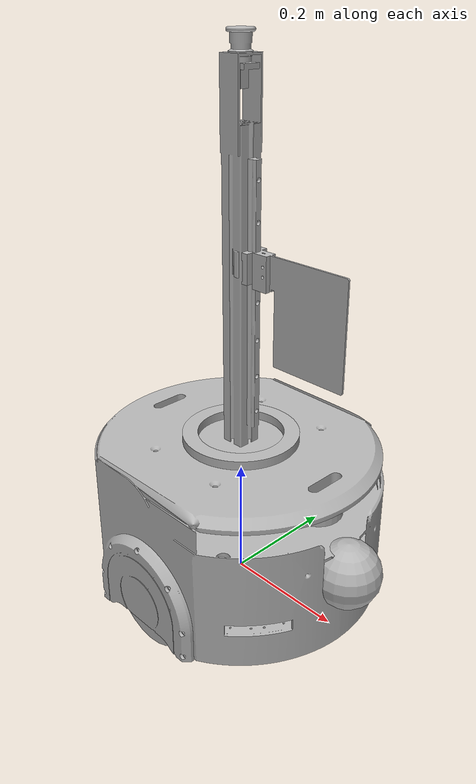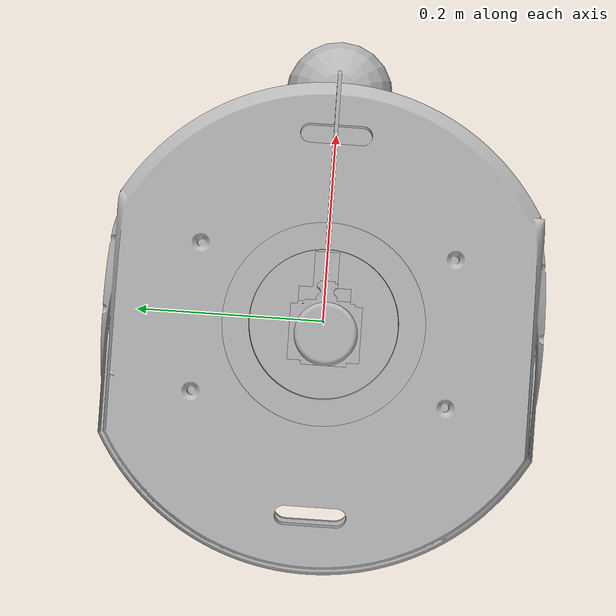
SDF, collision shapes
<?xml version='1.0' ?>
<sdf version='1.6'>
  <model name='amr'>
        <pose>0.0 0.0 -0.033 0 0 0</pose>
    	<link name='base_footprint' />

      	<joint name='base_link_joint' type='fixed'>
      		<pose>0.235 0.025 0.033 0 0 1.5708</pose>
      		<parent>base_footprint</parent>
      		<child>base_link</child>
      	</joint>

    	<link name='base_link'>
      		<inertial>
      		        <pose>0 0 0 0 0 0</pose>
        		<mass>40.0302</mass>
        		<inertia>
          			<ixx>0.7463130412500001</ixx>
          			<ixy>0</ixy>
          			<ixz>0</ixz>
          			<iyy>0.7463130412500001</iyy>
          			<iyz>0</iyz>
          			<izz>0.105879879</izz>
        		</inertia>
        	</inertial>

      		<collision name='base_link_collision'>
        		<pose relative_to='base_footprint' >0.235 0.025 0.033 0 0 1.5708</pose>
        		<geometry>
          			<mesh>
            				<uri>model://amr/meshes/ROBOTSEMNADA.dae</uri>
          			</mesh>
        		</geometry>
      		</collision>
      		<visual name='base_link_visual'>
        		<pose relative_to='base_footprint' >0.235 0.025 0.033 0 0 1.5708</pose>
        		<geometry>
          			<mesh>
            				<uri>model://amr/meshes/ROBOTSEMNADA.dae</uri>
          			</mesh>
        		</geometry>
        	</visual>
      </link>

      <joint name='torre_joint' type='fixed'>
      		<pose relative_to='base_link'>0.23 0 0.15 0 0 0</pose>
      		<parent>base_link</parent>
      		<child>torre_link</child>
      </joint>

      <link name='torre_link'>
      		<collision name='lidar_sensor_collision'>
          		<pose>0 0 0.285 0 0 1.5708</pose>
            		<geometry>
          			<mesh>
            				<uri>model://amr/meshes/torre001.dae</uri>
          			</mesh>
        		</geometry>
        	</collision>
      		<visual name='lidar_sensor_visual'>
        		<pose>0 0 0.285 0 0 1.5708</pose>
        		<geometry>
          			<mesh>
            				<uri>model://amr/meshes/torre001.dae</uri>
          			</mesh>
        		</geometry>
      		</visual>
      </link>

      <link name='realsense_link'>
      		<pose>0.23 0 0.15 0 0 0</pose>
      		<sensor name="cameracolor" type="camera">
        		<camera name="camera">
          			<horizontal_fov>1.57</horizontal_fov>
          			<image>
            				<width>1280</width>
            				<height>720</height>
            				<format>RGB_INT8</format>
          			</image>
          			<clip>
            				<near>0.1</near>
            				<far>100</far>
          			</clip>
          			<noise>
            				<type>gaussian</type>
            				<mean>0.0</mean>
            				<stddev>0.007</stddev>
          			</noise>
        		</camera>
        		<always_on>1</always_on>
        		<update_rate>30</update_rate>
        		<visualize>1</visualize>
     		</sensor>
      		<sensor name="cameradepth" type="depth">
        		<camera name="camera">
          			<horizontal_fov>1.57</horizontal_fov>
          			<image>
            				<width>1280</width>
            				<height>720</height>
          			</image>
          			<clip>
            				<near>0.1</near>
            				<far>100</far>
          			</clip>
          			<noise>
            				<type>gaussian</type>
            				<mean>0.0</mean>
            				<stddev>0.100</stddev>
          			</noise>
        		</camera>
        		<always_on>1</always_on>
        		<update_rate>30</update_rate>
        		<visualize>0</visualize>
     		 </sensor>
      		<sensor name="cameraired1" type="camera">
        <camera name="camera">
          <horizontal_fov>1.57</horizontal_fov>
          <image>
            <width>1280</width>
            <height>720</height>
            <format>L_INT8</format>
          </image>
          <clip>
            <near>0.1</near>
            <far>100</far>
          </clip>
          <noise>
            <type>gaussian</type>
            <mean>0.0</mean>
            <stddev>0.05</stddev>
          </noise>
        </camera>
        <always_on>1</always_on>
        <update_rate>1</update_rate>
        <visualize>0</visualize>
      </sensor>
      <sensor name="cameraired2" type="camera">
        <camera name="camera">
          <horizontal_fov>1.57</horizontal_fov>
          <image>
            <width>1280</width>
            <height>720</height>
            <format>L_INT8</format>
          </image>
          <clip>
            <near>0.1</near>
            <far>100</far>
          </clip>
          <noise>
            <type>gaussian</type>
            <mean>0.0</mean>
            <stddev>0.05</stddev>
          </noise>
        </camera>
        <always_on>1</always_on>
        <update_rate>1</update_rate>
        <visualize>0</visualize>
      </sensor>

    		<collision name='camera_link_collision'>
       		<pose>0 0 0 0 -0 0</pose>
        		<geometry>
          			<sphere>
            				<radius>0.054</radius>
          			</sphere>
        		</geometry>
      		</collision>
      		<visual name='camera_link_visual'>
        		<pose>0 0 0 1.57 0 1.57</pose>
        		<geometry>
          			<mesh>
            				<scale>1 1 1</scale>
            				<uri>model://amr/meshes/d435.dae</uri>
          			</mesh>
        		</geometry>
      		</visual>
      		<inertial>
        		<pose>0 0 0 0 0 0</pose>
        			<inertia>
          				<ixx>0.001</ixx>
          				<ixy>0.000</ixy>
          				<ixz>0.000</ixz>
          				<iyy>0.001</iyy>
          				<iyz>0.000</iyz>
          				<izz>0.001</izz>
        			</inertia>
        		<mass>0.564</mass>
      		</inertial>
      	</link>

    	<joint name='camera_joint' type='fixed'>
      		<pose relative_to='base_link'>0.23 0 0.15 0 0 0</pose>
      		<parent>base_link</parent>
      		<child>realsense_link</child>
        </joint>
        <plugin name="camera" filename="librealsense_gazebo_plugin.so">
      	<prefix>camera</prefix>
      <depthUpdateRate>30.0</depthUpdateRate>
      <colorUpdateRate>30.0</colorUpdateRate>
      <infraredUpdateRate>1.0</infraredUpdateRate>
      <depthTopicName>aligned_depth_to_color/image_raw</depthTopicName>
      <depthCameraInfoTopicName>depth/camera_info</depthCameraInfoTopicName>
      <colorTopicName>color/image_raw</colorTopicName>
      <colorCameraInfoTopicName>color/camera_info</colorCameraInfoTopicName>
      <infrared1TopicName>infra1/image_raw</infrared1TopicName>
      <infrared1CameraInfoTopicName>infra1/camera_info</infrared1CameraInfoTopicName>
      <infrared2TopicName>infra2/image_raw</infrared2TopicName>
      <infrared2CameraInfoTopicName>infra2/camera_info</infrared2CameraInfoTopicName>
      <colorOpticalframeName>camera_rgb_optical_frame</colorOpticalframeName>
      <depthOpticalframeName>camera_depth_optical_frame</depthOpticalframeName>
      <infrared1OpticalframeName>camera_left_ir_optical_frame</infrared1OpticalframeName>
      <infrared2OpticalframeName>camera_right_ir_optical_frame</infrared2OpticalframeName>
      <rangeMinDepth>0.3</rangeMinDepth>
      <rangeMaxDepth>3.0</rangeMaxDepth>
      <pointCloud>true</pointCloud>
      <pointCloudTopicName>depth/color/points</pointCloudTopicName>
      <pointCloudCutoff>0.3</pointCloudCutoff>
    </plugin>

    	<joint name='lidar_joint' type='fixed'>
      		<pose>0.165 0 0.24 0 -0 0</pose>
      		<parent>base_link</parent>
      		<child>lidar_link</child>
    	</joint>

      	<link name='lidar_link'>
        	<inertial>
        <pose>-0.052 0 0.111 0 0 0</pose>
        <inertia>
          <ixx>0.001</ixx>
          <ixy>0.000</ixy>
          <ixz>0.000</ixz>
          <iyy>0.001</iyy>
          <iyz>0.000</iyz>
          <izz>0.001</izz>
        </inertia>
        <mass>0.114</mass>
      </inertial>
        	<collision name='lidar_sensor_collision'>
          		<pose>0.165 0 0.24 0 -0 0</pose>
          		<geometry>
            			<cylinder>
              				<radius>0.04</radius>
              				<length>0.02</length>
            			</cylinder>
          		</geometry>
        	</collision>
      		<visual name='lidar_sensor_visual'>
        		<pose>0.165 0 0.24 0 0 0</pose>
        		<geometry>
          			<cylinder>
            				<length>0.04</length>
            				<radius>0.02</radius>
          			</cylinder>
        		</geometry>
      		</visual>
      		<sensor name='amr_laserscan' type='ray'>
          		<always_on>1</always_on>
          		<visualize>1</visualize>
          		<pose>0.165 0 0.24 0 -0 0</pose>
          		<update_rate>10</update_rate>
          		<ray>
            			<scan>
              				<horizontal>
                				<samples>720</samples>
                				<resolution>0.5</resolution>
                				<min_angle>-2.194</min_angle>
                				<max_angle>2.194</max_angle>
              				</horizontal>
              				<vertical>
                				<samples>1</samples>
                				<min_angle>0</min_angle>
                				<max_angle>2</max_angle>
              				</vertical>
            			</scan>
            			<range>
              				<min>0.33</min>
              				<max>12.5</max>
              				<resolution>0.05</resolution>
            			</range>
            			<noise>
              				<type>gaussian</type>
              				<mean>0</mean>
              				<stddev>0.001</stddev>
            			</noise>
          		</ray>
          		<plugin name='base_scan' filename='libgazebo_ros_ray_sensor.so'>
            			<ros>
              				<remapping>~/out:=scan</remapping>
            			</ros>
            			<output_type>sensor_msgs/LaserScan</output_type>
            			<frame_name>base_scan</frame_name>
            			<base_frame_id>base_link</base_frame_id>
          		</plugin>
        	</sensor>
    </link>

    <!--isto está errado torna o robot instável-->
    <joint name='pega_joint' type='fixed'>
    		<pose relative_to='base_footprint'>0 0 0.44 0 0 3.1415927</pose>
      		<parent>base_link</parent>
      		<child>pega_link</child>
    </joint>

    <link name='pega_link'>
      		<pose relative_to='base_footprint'>0 0 0.44 0 0 3.1415927</pose>
      <inertial>
        <pose>0 0 0 0 -0 0</pose>
        <mass>1.000</mass>
        <inertia>
        <ixx>0.00025349</ixx>
          <ixy>0</ixy>
          <ixz>0</ixz>
          <iyy>0.00025349</iyy>
          <iyz>0</iyz>
          <izz>0.000340312</izz>
          </inertia>
      </inertial>
      		<collision name='pega_link_collision'>
        		<pose>-.2 0 0 1.57 0 0</pose>
        		<geometry>
          			<mesh>
            				<uri>model://amr/meshes/pega001.dae</uri>
          			</mesh>
        		</geometry>
      		</collision>
      		<visual name='pega_link_visual'>
        		<pose>-.2 0 0 1.57 0 0</pose>
        		<geometry>
          			<mesh>
            				<scale>1 1 1</scale>
            				<uri>model://amr/meshes/pega001.dae</uri>
          			</mesh>
        		</geometry>
      		</visual>
    </link>

    <joint name='fcaster_joint' type='ball'>
    	<pose relative_to='base_footprint'>0.135 0 0.025 0 -0 0</pose>
    		<parent>base_link</parent>
      		<child>fcaster_link</child>
      		<axis>
        		<xyz>1 1 1</xyz>
        		<limit>
          			<lower>-1e+16</lower>
          			<upper>1e+16</upper>
          			<effort>1</effort>
          			<velocity>5</velocity>
        		</limit>
        		<dynamics>
          			<spring_reference>0</spring_reference>
          			<spring_stiffness>0</spring_stiffness>
        		</dynamics>
      		</axis>
    </joint>

    <link name='fcaster_link'>
      	<pose relative_to='base_footprint'>0.135 0 0.025 0 -0 0</pose>
      	<inertial>
        	<mass>1</mass>
        	<inertia>
          		<ixx>0.0025349</ixx>
          		<ixy>0</ixy>
          		<ixz>0</ixz>
          		<iyy>0.0025349</iyy>
          		<iyz>0</iyz>
          		<izz>0.00340312</izz>
        	</inertia>
      	</inertial>
      	<collision name='fcaster_link_collision'>
        	<pose>0 0 0.0 0 -0 0</pose>
        	<geometry>
          		<sphere>
            			<radius>0.025</radius>
          		</sphere>
        	</geometry>
      	</collision>
      	<visual name='fcaster_link_visual'>
        	<pose>0 0 0 0 0 0</pose>
        	<geometry>
          		<sphere>
            			<radius>0.025</radius>
          		</sphere>
        	</geometry>
      	</visual>
    </link>

    <joint name='rcaster_joint' type='ball'>
     	<pose relative_to='base_footprint'>-0.135 0 0.025 0 0 0</pose>
      	<parent>base_link</parent>
      	<child>rcaster_link</child>
      	<axis>
        	<xyz>1 1 1</xyz>
        	<limit>
          		<lower>-1e+16</lower>
          		<upper>1e+16</upper>
          		<effort>1</effort>
          		<velocity>5</velocity>
        	</limit>
        	<dynamics>
          		<spring_reference>0</spring_reference>
          		<spring_stiffness>0</spring_stiffness>
        	</dynamics>
      	</axis>
    </joint>

    <link name='rcaster_link'>
      	<pose relative_to='base_footprint'>-0.135 0 0.025 0 0 0</pose>
      	<inertial>
        	<mass>1</mass>
        	<inertia>
          		<ixx>0.0025349</ixx>
          		<ixy>0</ixy>
          		<ixz>0</ixz>
          		<iyy>0.0025349</iyy>
          		<iyz>0</iyz>
          		<izz>0.00340312</izz>
        	</inertia>
      	</inertial>
      	<collision name='rcaster_link_collision'>
        	<pose>0 0 0.0 0 -0 0</pose>
        	<geometry>
          		<sphere>
            			<radius>0.025</radius>
          		</sphere>
        	</geometry>
      	</collision>
      	<visual name='rcaster_link_visual'>
        	<pose>0 0 0.0 0 -0 0</pose>
        	<geometry>
          		<sphere>
            			<radius>0.025</radius>
          		</sphere>
        	</geometry>
      	</visual>
    </link>

    <joint name='lwheel_joint' type='revolute'>
      <pose relative_to='base_footprint'>0 0.1825 0.0825 -1.5708 0 0</pose>
      <parent>base_link</parent>
      <child>lwheel_link</child>
      <axis>
        <xyz>0 0 1</xyz>
        <limit>
          <lower>-1e+16</lower>
          <upper>1e+16</upper>
          <effort>1</effort>
          <velocity>5</velocity>
        </limit>
        <dynamics>
          <spring_reference>0</spring_reference>
          <spring_stiffness>0</spring_stiffness>
        </dynamics>
      </axis>
    </joint>

    <link name='lwheel_link'>
      <pose relative_to='base_footprint'>0 0.1825 0.0825 -1.5708 0 0</pose>
      <inertial>
        <pose>0 0 0 0 -0 0</pose>
        <mass>10.05</mass>
        <inertia>
          <ixx>0.00117223</ixx>
          <ixy>0</ixy>
          <ixz>0</ixz>
          <iyy>0.0117223</iyy>
          <iyz>0</iyz>
          <izz>0.00117223</izz>
        </inertia>
      </inertial>
      <collision name='lwheel_link_collision'>
        <pose>0 0 0 0 -0 0</pose>
        <geometry>
          <cylinder>
            <length>0.0435</length>
            <radius>0.0825</radius>
          </cylinder>
        </geometry>
      </collision>
      <visual name='lwheel_link_visual'>
        <pose>0 0 0 1.5708 -0 0</pose>
        <geometry>
          <mesh>
            <scale>1 1 1</scale>
            <uri>model://amr/meshes/amr_wheel.dae</uri>
          </mesh>
        </geometry>
      </visual>
    </link>

    <joint name='rwheel_joint' type='revolute'>
      <pose relative_to='base_footprint'>0 -0.1825 0.0825 1.5708 -0 0</pose>
      <parent>base_link</parent>
      <child>rwheel_link</child>
      <axis>
        <xyz>0 0 -1</xyz>
        <limit>
          <lower>-1e+16</lower>
          <upper>1e+16</upper>
          <effort>1</effort>
          <velocity>5</velocity>
        </limit>
        <dynamics>
          <spring_reference>0</spring_reference>
          <spring_stiffness>0</spring_stiffness>
        </dynamics>
      </axis>
    </joint>
    <link name='rwheel_link'>
      <pose relative_to='base_footprint'>0 -0.1825 0.0825 1.5708 -0 0</pose>
      <inertial>
        <pose>0 0 0 0 -0 0</pose>
        <mass>10.05</mass>
        <inertia>
          <ixx>0.00117223</ixx>
          <ixy>0</ixy>
          <ixz>0</ixz>
          <iyy>0.0117223</iyy>
          <iyz>0</iyz>
          <izz>0.00117223</izz>
        </inertia>
      </inertial>
      <collision name='rwheel_link_collision'>
        <pose>0 0 0 0 -0 0</pose>
        <geometry>
          <cylinder>
            <length>0.0435</length>
            <radius>0.0825</radius>
          </cylinder>
        </geometry>
      </collision>
      <visual name='rwheel_link_visual'>
        <pose>0 0 0 1.5708 -0 0</pose>
        <geometry>
          <mesh>
            <scale>1 1 1</scale>
            <uri>model://amr/meshes/amr_wheel.dae</uri>
          </mesh>
        </geometry>
      </visual>
    </link>

    <joint name='imu_joint' type='fixed'>
      <pose relative_to='base_footprint'>0.165 0 0.24 0 -0 0</pose>
      <parent>base_link</parent>
      <child>imu_link</child>
    </joint>

    <link name='imu_link'>
        <sensor name='tb3_imu' type='imu'>
          <always_on>1</always_on>
          <update_rate>20</update_rate>
          <imu>
            <angular_velocity>
              <x>
                <noise type='gaussian'>
                  <mean>0</mean>
                  <stddev>0.0002</stddev>
                </noise>
              </x>
              <y>
                <noise type='gaussian'>
                  <mean>0</mean>
                  <stddev>0.0002</stddev>
                </noise>
              </y>
              <z>
                <noise type='gaussian'>
                  <mean>0</mean>
                  <stddev>0.0002</stddev>
                </noise>
              </z>
            </angular_velocity>
            <linear_acceleration>
              <x>
                <noise type='gaussian'>
                  <mean>0</mean>
                  <stddev>0.017</stddev>
                </noise>
              </x>
              <y>
                <noise type='gaussian'>
                  <mean>0</mean>
                  <stddev>0.017</stddev>
                </noise>
              </y>
              <z>
                <noise type='gaussian'>
                  <mean>0</mean>
                  <stddev>0.017</stddev>
                </noise>
              </z>
            </linear_acceleration>
          </imu>
          <plugin name='amr_imu' filename='libgazebo_ros_imu_sensor.so'>
            <ros>
              <remapping>~/out:=imu</remapping>
            </ros>
          </plugin>
        </sensor>
        <self_collide>0</self_collide>
        <inertial>
          <pose>0 0 0 0 -0 0</pose>
          <inertia>
            <ixx>1</ixx>
            <ixy>0</ixy>
            <ixz>0</ixz>
            <iyy>1</iyy>
            <iyz>0</iyz>
            <izz>1</izz>
          </inertia>
          <mass>1</mass>
        </inertial>
        <enable_wind>0</enable_wind>
        <kinematic>0</kinematic>
      </link>

    <plugin name='amr_diff_drive' filename='libgazebo_ros_diff_drive.so'>
        <update_rate>10</update_rate>
        <left_joint>lwheel_joint</left_joint>
        <right_joint>rwheel_joint</right_joint>
        <wheel_separation>0.365</wheel_separation>
        <wheel_diameter>0.23</wheel_diameter>
        <max_wheel_torque>20000</max_wheel_torque>
        <max_wheel_acceleration>1.0</max_wheel_acceleration>
        <command_topic>cmd_vel</command_topic>
        <odometry_topic>odometry</odometry_topic>
        <odometry_frame>odom</odometry_frame>
        <robot_base_frame>base_footprint</robot_base_frame>
        <!-- topic & remappings -->
        <ros>
   		<remapping>/cmd_vel:=diff_drive/cmd_vel</remapping>
  	</ros>
  	<publish_odom>1</publish_odom>
        <publish_odom_tf>1</publish_odom_tf>
        <publish_wheel_tf>0</publish_wheel_tf>
    </plugin>
    <plugin name='amr_joint_state' filename='libgazebo_ros_joint_state_publisher.so'>
        <ros>
          <remapping>~/out:=joint_states</remapping>
        </ros>
        <update_rate>30</update_rate>
        <joint_name>lwheel_joint</joint_name>
        <joint_name>rwheel_joint</joint_name>
      </plugin>
  </model>
</sdf>
